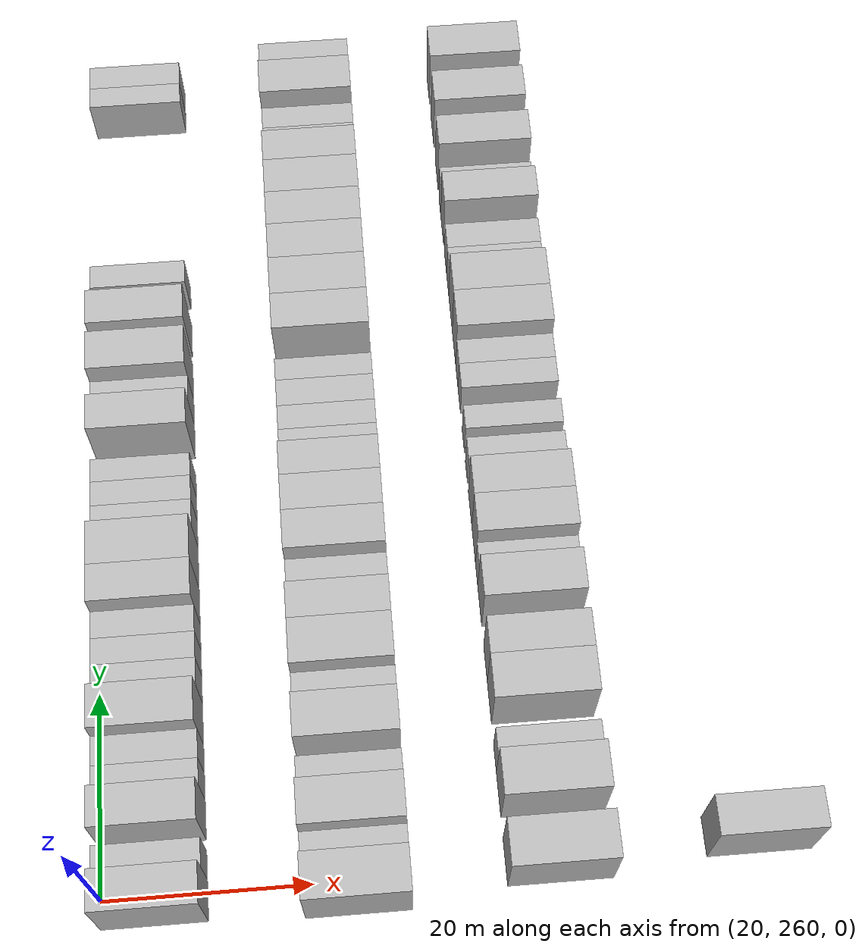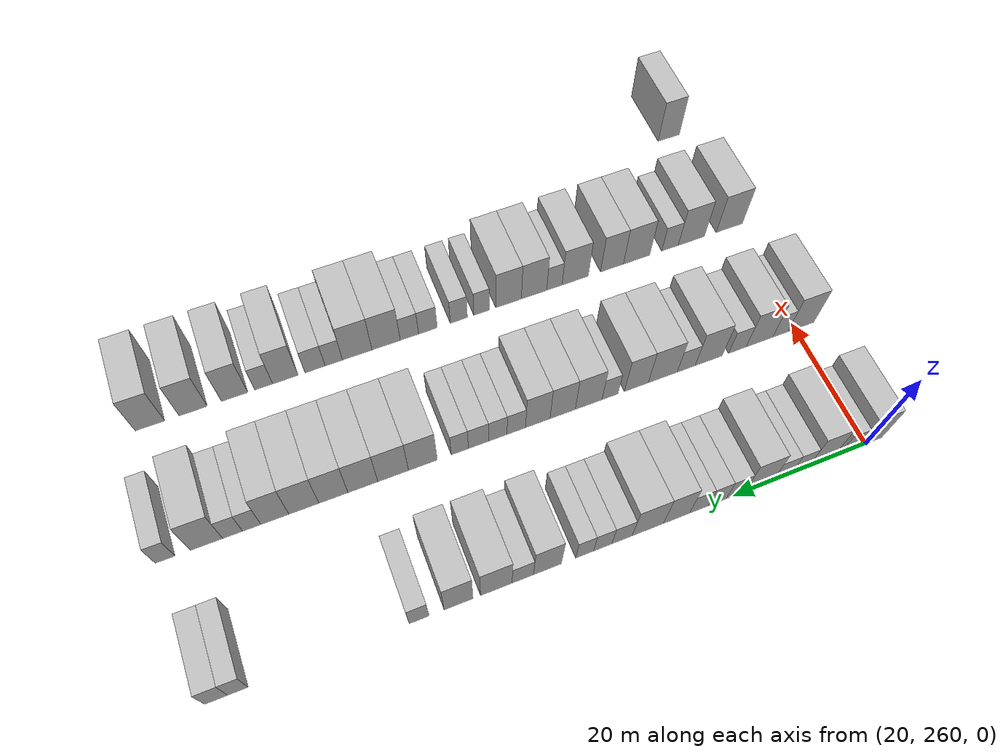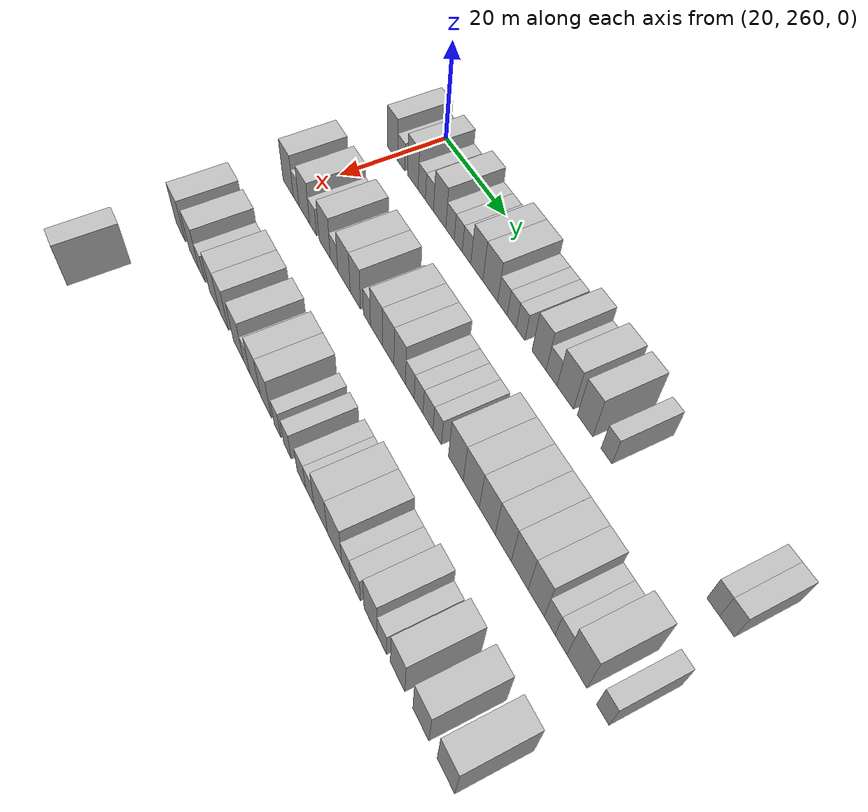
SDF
<sdf version="1.6">
 <world name="default">
  <model name="building_156">
   <static>1</static>
   <pose>25.0000 259.3007 0 0.000000 0.000000 0.000000</pose>
   <link name="link">
    <pose>0 0 4.50 0 0 0</pose>
    <collision name="collision"><geometry><box><size>10.0000 3.8417 9.0000</size></box></geometry></collision>
    <visual name="visual">
     <cast_shadows>0</cast_shadows>
     <geometry><box><size>10.0000 3.8417 9.0000</size></box></geometry>
     <material>
      <script>
       <uri>model://HANNAS_wall/materials/scripts</uri>
       <uri>model://HANNAS_wall/materials/textures</uri>
       <name>vrc/HANNAS_wall</name>
      </script>
     </material>
    </visual>
   </link>
  </model>
  <model name="building_157">
   <static>1</static>
   <pose>25.0000 262.5738 0 0.000000 0.000000 0.000000</pose>
   <link name="link">
    <pose>0 0 3.00 0 0 0</pose>
    <collision name="collision"><geometry><box><size>10.0000 2.7045 6.0000</size></box></geometry></collision>
    <visual name="visual">
     <cast_shadows>0</cast_shadows>
     <geometry><box><size>10.0000 2.7045 6.0000</size></box></geometry>
     <material>
      <script>
       <uri>model://HANNAS_wall/materials/scripts</uri>
       <uri>model://HANNAS_wall/materials/textures</uri>
       <name>vrc/HANNAS_wall</name>
      </script>
     </material>
    </visual>
   </link>
  </model>
  <model name="building_158">
   <static>1</static>
   <pose>25.0000 266.8397 0 0.000000 0.000000 0.000000</pose>
   <link name="link">
    <pose>0 0 4.50 0 0 0</pose>
    <collision name="collision"><geometry><box><size>10.0000 3.8274 9.0000</size></box></geometry></collision>
    <visual name="visual">
     <cast_shadows>0</cast_shadows>
     <geometry><box><size>10.0000 3.8274 9.0000</size></box></geometry>
     <material>
      <script>
       <uri>model://HANNAS_wall/materials/scripts</uri>
       <uri>model://HANNAS_wall/materials/textures</uri>
       <name>vrc/HANNAS_wall</name>
      </script>
     </material>
    </visual>
   </link>
  </model>
  <model name="building_159">
   <static>1</static>
   <pose>25.0000 270.0467 0 0.000000 0.000000 0.000000</pose>
   <link name="link">
    <pose>0 0 3.00 0 0 0</pose>
    <collision name="collision"><geometry><box><size>10.0000 2.5865 6.0000</size></box></geometry></collision>
    <visual name="visual">
     <cast_shadows>0</cast_shadows>
     <geometry><box><size>10.0000 2.5865 6.0000</size></box></geometry>
     <material>
      <script>
       <uri>model://HANNAS_wall/materials/scripts</uri>
       <uri>model://HANNAS_wall/materials/textures</uri>
       <name>vrc/HANNAS_wall</name>
      </script>
     </material>
    </visual>
   </link>
  </model>
  <model name="building_160">
   <static>1</static>
   <pose>25.0000 272.7439 0 0.000000 0.000000 0.000000</pose>
   <link name="link">
    <pose>0 0 3.00 0 0 0</pose>
    <collision name="collision"><geometry><box><size>10.0000 2.8078 6.0000</size></box></geometry></collision>
    <visual name="visual">
     <cast_shadows>0</cast_shadows>
     <geometry><box><size>10.0000 2.8078 6.0000</size></box></geometry>
     <material>
      <script>
       <uri>model://HANNAS_wall/materials/scripts</uri>
       <uri>model://HANNAS_wall/materials/textures</uri>
       <name>vrc/HANNAS_wall</name>
      </script>
     </material>
    </visual>
   </link>
  </model>
  <model name="building_161">
   <static>1</static>
   <pose>25.0000 276.2469 0 0.000000 0.000000 0.000000</pose>
   <link name="link">
    <pose>0 0 4.50 0 0 0</pose>
    <collision name="collision"><geometry><box><size>10.0000 4.1984 9.0000</size></box></geometry></collision>
    <visual name="visual">
     <cast_shadows>0</cast_shadows>
     <geometry><box><size>10.0000 4.1984 9.0000</size></box></geometry>
     <material>
      <script>
       <uri>model://HANNAS_wall/materials/scripts</uri>
       <uri>model://HANNAS_wall/materials/textures</uri>
       <name>vrc/HANNAS_wall</name>
      </script>
     </material>
    </visual>
   </link>
  </model>
  <model name="building_162">
   <static>1</static>
   <pose>25.0000 279.7434 0 0.000000 0.000000 0.000000</pose>
   <link name="link">
    <pose>0 0 3.00 0 0 0</pose>
    <collision name="collision"><geometry><box><size>10.0000 2.7946 6.0000</size></box></geometry></collision>
    <visual name="visual">
     <cast_shadows>0</cast_shadows>
     <geometry><box><size>10.0000 2.7946 6.0000</size></box></geometry>
     <material>
      <script>
       <uri>model://HANNAS_wall/materials/scripts</uri>
       <uri>model://HANNAS_wall/materials/textures</uri>
       <name>vrc/HANNAS_wall</name>
      </script>
     </material>
    </visual>
   </link>
  </model>
  <model name="building_163">
   <static>1</static>
   <pose>25.0000 282.4651 0 0.000000 0.000000 0.000000</pose>
   <link name="link">
    <pose>0 0 3.00 0 0 0</pose>
    <collision name="collision"><geometry><box><size>10.0000 2.6487 6.0000</size></box></geometry></collision>
    <visual name="visual">
     <cast_shadows>0</cast_shadows>
     <geometry><box><size>10.0000 2.6487 6.0000</size></box></geometry>
     <material>
      <script>
       <uri>model://HANNAS_wall/materials/scripts</uri>
       <uri>model://HANNAS_wall/materials/textures</uri>
       <name>vrc/HANNAS_wall</name>
      </script>
     </material>
    </visual>
   </link>
  </model>
  <model name="building_164">
   <static>1</static>
   <pose>25.0000 285.1499 0 0.000000 0.000000 0.000000</pose>
   <link name="link">
    <pose>0 0 3.00 0 0 0</pose>
    <collision name="collision"><geometry><box><size>10.0000 2.7208 6.0000</size></box></geometry></collision>
    <visual name="visual">
     <cast_shadows>0</cast_shadows>
     <geometry><box><size>10.0000 2.7208 6.0000</size></box></geometry>
     <material>
      <script>
       <uri>model://HANNAS_wall/materials/scripts</uri>
       <uri>model://HANNAS_wall/materials/textures</uri>
       <name>vrc/HANNAS_wall</name>
      </script>
     </material>
    </visual>
   </link>
  </model>
  <model name="building_165">
   <static>1</static>
   <pose>25.0000 288.4008 0 0.000000 0.000000 0.000000</pose>
   <link name="link">
    <pose>0 0 4.50 0 0 0</pose>
    <collision name="collision"><geometry><box><size>10.0000 3.7812 9.0000</size></box></geometry></collision>
    <visual name="visual">
     <cast_shadows>0</cast_shadows>
     <geometry><box><size>10.0000 3.7812 9.0000</size></box></geometry>
     <material>
      <script>
       <uri>model://HANNAS_wall/materials/scripts</uri>
       <uri>model://HANNAS_wall/materials/textures</uri>
       <name>vrc/HANNAS_wall</name>
      </script>
     </material>
    </visual>
   </link>
  </model>
  <model name="building_166">
   <static>1</static>
   <pose>25.0000 292.5384 0 0.000000 0.000000 0.000000</pose>
   <link name="link">
    <pose>0 0 4.50 0 0 0</pose>
    <collision name="collision"><geometry><box><size>10.0000 4.4939 9.0000</size></box></geometry></collision>
    <visual name="visual">
     <cast_shadows>0</cast_shadows>
     <geometry><box><size>10.0000 4.4939 9.0000</size></box></geometry>
     <material>
      <script>
       <uri>model://HANNAS_wall/materials/scripts</uri>
       <uri>model://HANNAS_wall/materials/textures</uri>
       <name>vrc/HANNAS_wall</name>
      </script>
     </material>
    </visual>
   </link>
  </model>
  <model name="building_167">
   <static>1</static>
   <pose>25.0000 296.2162 0 0.000000 0.000000 0.000000</pose>
   <link name="link">
    <pose>0 0 3.00 0 0 0</pose>
    <collision name="collision"><geometry><box><size>10.0000 2.8618 6.0000</size></box></geometry></collision>
    <visual name="visual">
     <cast_shadows>0</cast_shadows>
     <geometry><box><size>10.0000 2.8618 6.0000</size></box></geometry>
     <material>
      <script>
       <uri>model://HANNAS_wall/materials/scripts</uri>
       <uri>model://HANNAS_wall/materials/textures</uri>
       <name>vrc/HANNAS_wall</name>
      </script>
     </material>
    </visual>
   </link>
  </model>
  <model name="building_168">
   <static>1</static>
   <pose>25.0000 298.9432 0 0.000000 0.000000 0.000000</pose>
   <link name="link">
    <pose>0 0 3.00 0 0 0</pose>
    <collision name="collision"><geometry><box><size>10.0000 2.5921 6.0000</size></box></geometry></collision>
    <visual name="visual">
     <cast_shadows>0</cast_shadows>
     <geometry><box><size>10.0000 2.5921 6.0000</size></box></geometry>
     <material>
      <script>
       <uri>model://HANNAS_wall/materials/scripts</uri>
       <uri>model://HANNAS_wall/materials/textures</uri>
       <name>vrc/HANNAS_wall</name>
      </script>
     </material>
    </visual>
   </link>
  </model>
  <model name="building_169">
   <static>1</static>
   <pose>25.0000 301.4806 0 0.000000 0.000000 0.000000</pose>
   <link name="link">
    <pose>0 0 3.00 0 0 0</pose>
    <collision name="collision"><geometry><box><size>10.0000 2.4826 6.0000</size></box></geometry></collision>
    <visual name="visual">
     <cast_shadows>0</cast_shadows>
     <geometry><box><size>10.0000 2.4826 6.0000</size></box></geometry>
     <material>
      <script>
       <uri>model://HANNAS_wall/materials/scripts</uri>
       <uri>model://HANNAS_wall/materials/textures</uri>
       <name>vrc/HANNAS_wall</name>
      </script>
     </material>
    </visual>
   </link>
  </model>
  <model name="building_170">
   <static>1</static>
   <pose>25.0000 306.6456 0 0.000000 0.000000 0.000000</pose>
   <link name="link">
    <pose>0 0 4.50 0 0 0</pose>
    <collision name="collision"><geometry><box><size>10.0000 3.8474 9.0000</size></box></geometry></collision>
    <visual name="visual">
     <cast_shadows>0</cast_shadows>
     <geometry><box><size>10.0000 3.8474 9.0000</size></box></geometry>
     <material>
      <script>
       <uri>model://HANNAS_wall/materials/scripts</uri>
       <uri>model://HANNAS_wall/materials/textures</uri>
       <name>vrc/HANNAS_wall</name>
      </script>
     </material>
    </visual>
   </link>
  </model>
  <model name="building_171">
   <static>1</static>
   <pose>25.0000 310.0331 0 0.000000 0.000000 0.000000</pose>
   <link name="link">
    <pose>0 0 3.00 0 0 0</pose>
    <collision name="collision"><geometry><box><size>10.0000 2.9275 6.0000</size></box></geometry></collision>
    <visual name="visual">
     <cast_shadows>0</cast_shadows>
     <geometry><box><size>10.0000 2.9275 6.0000</size></box></geometry>
     <material>
      <script>
       <uri>model://HANNAS_wall/materials/scripts</uri>
       <uri>model://HANNAS_wall/materials/textures</uri>
       <name>vrc/HANNAS_wall</name>
      </script>
     </material>
    </visual>
   </link>
  </model>
  <model name="building_172">
   <static>1</static>
   <pose>25.0000 313.6250 0 0.000000 0.000000 0.000000</pose>
   <link name="link">
    <pose>0 0 4.50 0 0 0</pose>
    <collision name="collision"><geometry><box><size>10.0000 4.2563 9.0000</size></box></geometry></collision>
    <visual name="visual">
     <cast_shadows>0</cast_shadows>
     <geometry><box><size>10.0000 4.2563 9.0000</size></box></geometry>
     <material>
      <script>
       <uri>model://HANNAS_wall/materials/scripts</uri>
       <uri>model://HANNAS_wall/materials/textures</uri>
       <name>vrc/HANNAS_wall</name>
      </script>
     </material>
    </visual>
   </link>
  </model>
  <model name="building_173">
   <static>1</static>
   <pose>25.0000 318.6779 0 0.000000 0.000000 0.000000</pose>
   <link name="link">
    <pose>0 0 4.50 0 0 0</pose>
    <collision name="collision"><geometry><box><size>10.0000 3.8495 9.0000</size></box></geometry></collision>
    <visual name="visual">
     <cast_shadows>0</cast_shadows>
     <geometry><box><size>10.0000 3.8495 9.0000</size></box></geometry>
     <material>
      <script>
       <uri>model://HANNAS_wall/materials/scripts</uri>
       <uri>model://HANNAS_wall/materials/textures</uri>
       <name>vrc/HANNAS_wall</name>
      </script>
     </material>
    </visual>
   </link>
  </model>
  <model name="building_174">
   <static>1</static>
   <pose>25.0000 323.9062 0 0.000000 0.000000 0.000000</pose>
   <link name="link">
    <pose>0 0 3.00 0 0 0</pose>
    <collision name="collision"><geometry><box><size>10.0000 2.6072 6.0000</size></box></geometry></collision>
    <visual name="visual">
     <cast_shadows>0</cast_shadows>
     <geometry><box><size>10.0000 2.6072 6.0000</size></box></geometry>
     <material>
      <script>
       <uri>model://HANNAS_wall/materials/scripts</uri>
       <uri>model://HANNAS_wall/materials/textures</uri>
       <name>vrc/HANNAS_wall</name>
      </script>
     </material>
    </visual>
   </link>
  </model>
  <model name="building_175">
   <static>1</static>
   <pose>25.0000 346.9584 0 0.000000 0.000000 0.000000</pose>
   <link name="link">
    <pose>0 0 3.00 0 0 0</pose>
    <collision name="collision"><geometry><box><size>10.0000 2.4990 6.0000</size></box></geometry></collision>
    <visual name="visual">
     <cast_shadows>0</cast_shadows>
     <geometry><box><size>10.0000 2.4990 6.0000</size></box></geometry>
     <material>
      <script>
       <uri>model://HANNAS_wall/materials/scripts</uri>
       <uri>model://HANNAS_wall/materials/textures</uri>
       <name>vrc/HANNAS_wall</name>
      </script>
     </material>
    </visual>
   </link>
  </model>
  <model name="building_176">
   <static>1</static>
   <pose>25.0000 349.6196 0 0.000000 0.000000 0.000000</pose>
   <link name="link">
    <pose>0 0 3.00 0 0 0</pose>
    <collision name="collision"><geometry><box><size>10.0000 2.8233 6.0000</size></box></geometry></collision>
    <visual name="visual">
     <cast_shadows>0</cast_shadows>
     <geometry><box><size>10.0000 2.8233 6.0000</size></box></geometry>
     <material>
      <script>
       <uri>model://HANNAS_wall/materials/scripts</uri>
       <uri>model://HANNAS_wall/materials/textures</uri>
       <name>vrc/HANNAS_wall</name>
      </script>
     </material>
    </visual>
   </link>
  </model>
  <model name="building_329">
   <static>1</static>
   <pose>44.0000 259.1015 0 0.000000 0.000000 0.000000</pose>
   <link name="link">
    <pose>0 0 4.50 0 0 0</pose>
    <collision name="collision"><geometry><box><size>10.0000 4.3296 9.0000</size></box></geometry></collision>
    <visual name="visual">
     <cast_shadows>0</cast_shadows>
     <geometry><box><size>10.0000 4.3296 9.0000</size></box></geometry>
     <material>
      <script>
       <uri>model://HANNAS_wall/materials/scripts</uri>
       <uri>model://HANNAS_wall/materials/textures</uri>
       <name>vrc/HANNAS_wall</name>
      </script>
     </material>
    </visual>
   </link>
  </model>
  <model name="building_330">
   <static>1</static>
   <pose>44.0000 262.4718 0 0.000000 0.000000 0.000000</pose>
   <link name="link">
    <pose>0 0 3.00 0 0 0</pose>
    <collision name="collision"><geometry><box><size>10.0000 2.4110 6.0000</size></box></geometry></collision>
    <visual name="visual">
     <cast_shadows>0</cast_shadows>
     <geometry><box><size>10.0000 2.4110 6.0000</size></box></geometry>
     <material>
      <script>
       <uri>model://HANNAS_wall/materials/scripts</uri>
       <uri>model://HANNAS_wall/materials/textures</uri>
       <name>vrc/HANNAS_wall</name>
      </script>
     </material>
    </visual>
   </link>
  </model>
  <model name="building_331">
   <static>1</static>
   <pose>44.0000 265.8201 0 0.000000 0.000000 0.000000</pose>
   <link name="link">
    <pose>0 0 4.50 0 0 0</pose>
    <collision name="collision"><geometry><box><size>10.0000 4.2857 9.0000</size></box></geometry></collision>
    <visual name="visual">
     <cast_shadows>0</cast_shadows>
     <geometry><box><size>10.0000 4.2857 9.0000</size></box></geometry>
     <material>
      <script>
       <uri>model://HANNAS_wall/materials/scripts</uri>
       <uri>model://HANNAS_wall/materials/textures</uri>
       <name>vrc/HANNAS_wall</name>
      </script>
     </material>
    </visual>
   </link>
  </model>
  <model name="building_332">
   <static>1</static>
   <pose>44.0000 269.3614 0 0.000000 0.000000 0.000000</pose>
   <link name="link">
    <pose>0 0 3.00 0 0 0</pose>
    <collision name="collision"><geometry><box><size>10.0000 2.7969 6.0000</size></box></geometry></collision>
    <visual name="visual">
     <cast_shadows>0</cast_shadows>
     <geometry><box><size>10.0000 2.7969 6.0000</size></box></geometry>
     <material>
      <script>
       <uri>model://HANNAS_wall/materials/scripts</uri>
       <uri>model://HANNAS_wall/materials/textures</uri>
       <name>vrc/HANNAS_wall</name>
      </script>
     </material>
    </visual>
   </link>
  </model>
  <model name="building_333">
   <static>1</static>
   <pose>44.0000 273.9099 0 0.000000 0.000000 0.000000</pose>
   <link name="link">
    <pose>0 0 4.50 0 0 0</pose>
    <collision name="collision"><geometry><box><size>10.0000 4.2999 9.0000</size></box></geometry></collision>
    <visual name="visual">
     <cast_shadows>0</cast_shadows>
     <geometry><box><size>10.0000 4.2999 9.0000</size></box></geometry>
     <material>
      <script>
       <uri>model://HANNAS_wall/materials/scripts</uri>
       <uri>model://HANNAS_wall/materials/textures</uri>
       <name>vrc/HANNAS_wall</name>
      </script>
     </material>
    </visual>
   </link>
  </model>
  <model name="building_334">
   <static>1</static>
   <pose>44.0000 277.4587 0 0.000000 0.000000 0.000000</pose>
   <link name="link">
    <pose>0 0 3.00 0 0 0</pose>
    <collision name="collision"><geometry><box><size>10.0000 2.7978 6.0000</size></box></geometry></collision>
    <visual name="visual">
     <cast_shadows>0</cast_shadows>
     <geometry><box><size>10.0000 2.7978 6.0000</size></box></geometry>
     <material>
      <script>
       <uri>model://HANNAS_wall/materials/scripts</uri>
       <uri>model://HANNAS_wall/materials/textures</uri>
       <name>vrc/HANNAS_wall</name>
      </script>
     </material>
    </visual>
   </link>
  </model>
  <model name="building_335">
   <static>1</static>
   <pose>44.0000 281.1033 0 0.000000 0.000000 0.000000</pose>
   <link name="link">
    <pose>0 0 4.50 0 0 0</pose>
    <collision name="collision"><geometry><box><size>10.0000 4.4912 9.0000</size></box></geometry></collision>
    <visual name="visual">
     <cast_shadows>0</cast_shadows>
     <geometry><box><size>10.0000 4.4912 9.0000</size></box></geometry>
     <material>
      <script>
       <uri>model://HANNAS_wall/materials/scripts</uri>
       <uri>model://HANNAS_wall/materials/textures</uri>
       <name>vrc/HANNAS_wall</name>
      </script>
     </material>
    </visual>
   </link>
  </model>
  <model name="building_336">
   <static>1</static>
   <pose>44.0000 285.1801 0 0.000000 0.000000 0.000000</pose>
   <link name="link">
    <pose>0 0 4.50 0 0 0</pose>
    <collision name="collision"><geometry><box><size>10.0000 3.6625 9.0000</size></box></geometry></collision>
    <visual name="visual">
     <cast_shadows>0</cast_shadows>
     <geometry><box><size>10.0000 3.6625 9.0000</size></box></geometry>
     <material>
      <script>
       <uri>model://HANNAS_wall/materials/scripts</uri>
       <uri>model://HANNAS_wall/materials/textures</uri>
       <name>vrc/HANNAS_wall</name>
      </script>
     </material>
    </visual>
   </link>
  </model>
  <model name="building_337">
   <static>1</static>
   <pose>44.0000 289.2241 0 0.000000 0.000000 0.000000</pose>
   <link name="link">
    <pose>0 0 3.00 0 0 0</pose>
    <collision name="collision"><geometry><box><size>10.0000 2.4255 6.0000</size></box></geometry></collision>
    <visual name="visual">
     <cast_shadows>0</cast_shadows>
     <geometry><box><size>10.0000 2.4255 6.0000</size></box></geometry>
     <material>
      <script>
       <uri>model://HANNAS_wall/materials/scripts</uri>
       <uri>model://HANNAS_wall/materials/textures</uri>
       <name>vrc/HANNAS_wall</name>
      </script>
     </material>
    </visual>
   </link>
  </model>
  <model name="building_338">
   <static>1</static>
   <pose>44.0000 292.4538 0 0.000000 0.000000 0.000000</pose>
   <link name="link">
    <pose>0 0 4.50 0 0 0</pose>
    <collision name="collision"><geometry><box><size>10.0000 4.0338 9.0000</size></box></geometry></collision>
    <visual name="visual">
     <cast_shadows>0</cast_shadows>
     <geometry><box><size>10.0000 4.0338 9.0000</size></box></geometry>
     <material>
      <script>
       <uri>model://HANNAS_wall/materials/scripts</uri>
       <uri>model://HANNAS_wall/materials/textures</uri>
       <name>vrc/HANNAS_wall</name>
      </script>
     </material>
    </visual>
   </link>
  </model>
  <model name="building_339">
   <static>1</static>
   <pose>44.0000 296.3548 0 0.000000 0.000000 0.000000</pose>
   <link name="link">
    <pose>0 0 4.50 0 0 0</pose>
    <collision name="collision"><geometry><box><size>10.0000 3.7683 9.0000</size></box></geometry></collision>
    <visual name="visual">
     <cast_shadows>0</cast_shadows>
     <geometry><box><size>10.0000 3.7683 9.0000</size></box></geometry>
     <material>
      <script>
       <uri>model://HANNAS_wall/materials/scripts</uri>
       <uri>model://HANNAS_wall/materials/textures</uri>
       <name>vrc/HANNAS_wall</name>
      </script>
     </material>
    </visual>
   </link>
  </model>
  <model name="building_340">
   <static>1</static>
   <pose>44.0000 300.0553 0 0.000000 0.000000 0.000000</pose>
   <link name="link">
    <pose>0 0 4.50 0 0 0</pose>
    <collision name="collision"><geometry><box><size>10.0000 3.6328 9.0000</size></box></geometry></collision>
    <visual name="visual">
     <cast_shadows>0</cast_shadows>
     <geometry><box><size>10.0000 3.6328 9.0000</size></box></geometry>
     <material>
      <script>
       <uri>model://HANNAS_wall/materials/scripts</uri>
       <uri>model://HANNAS_wall/materials/textures</uri>
       <name>vrc/HANNAS_wall</name>
      </script>
     </material>
    </visual>
   </link>
  </model>
  <model name="building_341">
   <static>1</static>
   <pose>44.0000 303.2255 0 0.000000 0.000000 0.000000</pose>
   <link name="link">
    <pose>0 0 3.00 0 0 0</pose>
    <collision name="collision"><geometry><box><size>10.0000 2.7075 6.0000</size></box></geometry></collision>
    <visual name="visual">
     <cast_shadows>0</cast_shadows>
     <geometry><box><size>10.0000 2.7075 6.0000</size></box></geometry>
     <material>
      <script>
       <uri>model://HANNAS_wall/materials/scripts</uri>
       <uri>model://HANNAS_wall/materials/textures</uri>
       <name>vrc/HANNAS_wall</name>
      </script>
     </material>
    </visual>
   </link>
  </model>
  <model name="building_342">
   <static>1</static>
   <pose>44.0000 305.9161 0 0.000000 0.000000 0.000000</pose>
   <link name="link">
    <pose>0 0 3.00 0 0 0</pose>
    <collision name="collision"><geometry><box><size>10.0000 2.6736 6.0000</size></box></geometry></collision>
    <visual name="visual">
     <cast_shadows>0</cast_shadows>
     <geometry><box><size>10.0000 2.6736 6.0000</size></box></geometry>
     <material>
      <script>
       <uri>model://HANNAS_wall/materials/scripts</uri>
       <uri>model://HANNAS_wall/materials/textures</uri>
       <name>vrc/HANNAS_wall</name>
      </script>
     </material>
    </visual>
   </link>
  </model>
  <model name="building_343">
   <static>1</static>
   <pose>44.0000 308.7205 0 0.000000 0.000000 0.000000</pose>
   <link name="link">
    <pose>0 0 3.00 0 0 0</pose>
    <collision name="collision"><geometry><box><size>10.0000 2.9352 6.0000</size></box></geometry></collision>
    <visual name="visual">
     <cast_shadows>0</cast_shadows>
     <geometry><box><size>10.0000 2.9352 6.0000</size></box></geometry>
     <material>
      <script>
       <uri>model://HANNAS_wall/materials/scripts</uri>
       <uri>model://HANNAS_wall/materials/textures</uri>
       <name>vrc/HANNAS_wall</name>
      </script>
     </material>
    </visual>
   </link>
  </model>
  <model name="building_344">
   <static>1</static>
   <pose>44.0000 311.4164 0 0.000000 0.000000 0.000000</pose>
   <link name="link">
    <pose>0 0 3.00 0 0 0</pose>
    <collision name="collision"><geometry><box><size>10.0000 2.4567 6.0000</size></box></geometry></collision>
    <visual name="visual">
     <cast_shadows>0</cast_shadows>
     <geometry><box><size>10.0000 2.4567 6.0000</size></box></geometry>
     <material>
      <script>
       <uri>model://HANNAS_wall/materials/scripts</uri>
       <uri>model://HANNAS_wall/materials/textures</uri>
       <name>vrc/HANNAS_wall</name>
      </script>
     </material>
    </visual>
   </link>
  </model>
  <model name="building_345">
   <static>1</static>
   <pose>44.0000 316.6854 0 0.000000 0.000000 0.000000</pose>
   <link name="link">
    <pose>0 0 4.50 0 0 0</pose>
    <collision name="collision"><geometry><box><size>10.0000 4.0813 9.0000</size></box></geometry></collision>
    <visual name="visual">
     <cast_shadows>0</cast_shadows>
     <geometry><box><size>10.0000 4.0813 9.0000</size></box></geometry>
     <material>
      <script>
       <uri>model://HANNAS_wall/materials/scripts</uri>
       <uri>model://HANNAS_wall/materials/textures</uri>
       <name>vrc/HANNAS_wall</name>
      </script>
     </material>
    </visual>
   </link>
  </model>
  <model name="building_346">
   <static>1</static>
   <pose>44.0000 320.8776 0 0.000000 0.000000 0.000000</pose>
   <link name="link">
    <pose>0 0 4.50 0 0 0</pose>
    <collision name="collision"><geometry><box><size>10.0000 4.3031 9.0000</size></box></geometry></collision>
    <visual name="visual">
     <cast_shadows>0</cast_shadows>
     <geometry><box><size>10.0000 4.3031 9.0000</size></box></geometry>
     <material>
      <script>
       <uri>model://HANNAS_wall/materials/scripts</uri>
       <uri>model://HANNAS_wall/materials/textures</uri>
       <name>vrc/HANNAS_wall</name>
      </script>
     </material>
    </visual>
   </link>
  </model>
  <model name="building_347">
   <static>1</static>
   <pose>44.0000 325.0958 0 0.000000 0.000000 0.000000</pose>
   <link name="link">
    <pose>0 0 4.50 0 0 0</pose>
    <collision name="collision"><geometry><box><size>10.0000 4.1332 9.0000</size></box></geometry></collision>
    <visual name="visual">
     <cast_shadows>0</cast_shadows>
     <geometry><box><size>10.0000 4.1332 9.0000</size></box></geometry>
     <material>
      <script>
       <uri>model://HANNAS_wall/materials/scripts</uri>
       <uri>model://HANNAS_wall/materials/textures</uri>
       <name>vrc/HANNAS_wall</name>
      </script>
     </material>
    </visual>
   </link>
  </model>
  <model name="building_348">
   <static>1</static>
   <pose>44.0000 329.1545 0 0.000000 0.000000 0.000000</pose>
   <link name="link">
    <pose>0 0 4.50 0 0 0</pose>
    <collision name="collision"><geometry><box><size>10.0000 3.9843 9.0000</size></box></geometry></collision>
    <visual name="visual">
     <cast_shadows>0</cast_shadows>
     <geometry><box><size>10.0000 3.9843 9.0000</size></box></geometry>
     <material>
      <script>
       <uri>model://HANNAS_wall/materials/scripts</uri>
       <uri>model://HANNAS_wall/materials/textures</uri>
       <name>vrc/HANNAS_wall</name>
      </script>
     </material>
    </visual>
   </link>
  </model>
  <model name="building_349">
   <static>1</static>
   <pose>44.0000 333.1925 0 0.000000 0.000000 0.000000</pose>
   <link name="link">
    <pose>0 0 4.50 0 0 0</pose>
    <collision name="collision"><geometry><box><size>10.0000 4.0915 9.0000</size></box></geometry></collision>
    <visual name="visual">
     <cast_shadows>0</cast_shadows>
     <geometry><box><size>10.0000 4.0915 9.0000</size></box></geometry>
     <material>
      <script>
       <uri>model://HANNAS_wall/materials/scripts</uri>
       <uri>model://HANNAS_wall/materials/textures</uri>
       <name>vrc/HANNAS_wall</name>
      </script>
     </material>
    </visual>
   </link>
  </model>
  <model name="building_350">
   <static>1</static>
   <pose>44.0000 337.1166 0 0.000000 0.000000 0.000000</pose>
   <link name="link">
    <pose>0 0 4.50 0 0 0</pose>
    <collision name="collision"><geometry><box><size>10.0000 3.7567 9.0000</size></box></geometry></collision>
    <visual name="visual">
     <cast_shadows>0</cast_shadows>
     <geometry><box><size>10.0000 3.7567 9.0000</size></box></geometry>
     <material>
      <script>
       <uri>model://HANNAS_wall/materials/scripts</uri>
       <uri>model://HANNAS_wall/materials/textures</uri>
       <name>vrc/HANNAS_wall</name>
      </script>
     </material>
    </visual>
   </link>
  </model>
  <model name="building_351">
   <static>1</static>
   <pose>44.0000 340.2146 0 0.000000 0.000000 0.000000</pose>
   <link name="link">
    <pose>0 0 3.00 0 0 0</pose>
    <collision name="collision"><geometry><box><size>10.0000 2.4395 6.0000</size></box></geometry></collision>
    <visual name="visual">
     <cast_shadows>0</cast_shadows>
     <geometry><box><size>10.0000 2.4395 6.0000</size></box></geometry>
     <material>
      <script>
       <uri>model://HANNAS_wall/materials/scripts</uri>
       <uri>model://HANNAS_wall/materials/textures</uri>
       <name>vrc/HANNAS_wall</name>
      </script>
     </material>
    </visual>
   </link>
  </model>
  <model name="building_352">
   <static>1</static>
   <pose>44.0000 342.7566 0 0.000000 0.000000 0.000000</pose>
   <link name="link">
    <pose>0 0 3.00 0 0 0</pose>
    <collision name="collision"><geometry><box><size>10.0000 2.6445 6.0000</size></box></geometry></collision>
    <visual name="visual">
     <cast_shadows>0</cast_shadows>
     <geometry><box><size>10.0000 2.6445 6.0000</size></box></geometry>
     <material>
      <script>
       <uri>model://HANNAS_wall/materials/scripts</uri>
       <uri>model://HANNAS_wall/materials/textures</uri>
       <name>vrc/HANNAS_wall</name>
      </script>
     </material>
    </visual>
   </link>
  </model>
  <model name="building_353">
   <static>1</static>
   <pose>44.0000 346.2053 0 0.000000 0.000000 0.000000</pose>
   <link name="link">
    <pose>0 0 4.50 0 0 0</pose>
    <collision name="collision"><geometry><box><size>10.0000 4.2528 9.0000</size></box></geometry></collision>
    <visual name="visual">
     <cast_shadows>0</cast_shadows>
     <geometry><box><size>10.0000 4.2528 9.0000</size></box></geometry>
     <material>
      <script>
       <uri>model://HANNAS_wall/materials/scripts</uri>
       <uri>model://HANNAS_wall/materials/textures</uri>
       <name>vrc/HANNAS_wall</name>
      </script>
     </material>
    </visual>
   </link>
  </model>
  <model name="building_354">
   <static>1</static>
   <pose>44.0000 351.6042 0 0.000000 0.000000 0.000000</pose>
   <link name="link">
    <pose>0 0 3.00 0 0 0</pose>
    <collision name="collision"><geometry><box><size>10.0000 2.5450 6.0000</size></box></geometry></collision>
    <visual name="visual">
     <cast_shadows>0</cast_shadows>
     <geometry><box><size>10.0000 2.5450 6.0000</size></box></geometry>
     <material>
      <script>
       <uri>model://HANNAS_wall/materials/scripts</uri>
       <uri>model://HANNAS_wall/materials/textures</uri>
       <name>vrc/HANNAS_wall</name>
      </script>
     </material>
    </visual>
   </link>
  </model>
  <model name="building_505">
   <static>1</static>
   <pose>63.0000 260.6213 0 0.000000 0.000000 0.000000</pose>
   <link name="link">
    <pose>0 0 4.50 0 0 0</pose>
    <collision name="collision"><geometry><box><size>10.0000 4.4699 9.0000</size></box></geometry></collision>
    <visual name="visual">
     <cast_shadows>0</cast_shadows>
     <geometry><box><size>10.0000 4.4699 9.0000</size></box></geometry>
     <material>
      <script>
       <uri>model://HANNAS_wall/materials/scripts</uri>
       <uri>model://HANNAS_wall/materials/textures</uri>
       <name>vrc/HANNAS_wall</name>
      </script>
     </material>
    </visual>
   </link>
  </model>
  <model name="building_506">
   <static>1</static>
   <pose>63.0000 267.0608 0 0.000000 0.000000 0.000000</pose>
   <link name="link">
    <pose>0 0 4.50 0 0 0</pose>
    <collision name="collision"><geometry><box><size>10.0000 4.4092 9.0000</size></box></geometry></collision>
    <visual name="visual">
     <cast_shadows>0</cast_shadows>
     <geometry><box><size>10.0000 4.4092 9.0000</size></box></geometry>
     <material>
      <script>
       <uri>model://HANNAS_wall/materials/scripts</uri>
       <uri>model://HANNAS_wall/materials/textures</uri>
       <name>vrc/HANNAS_wall</name>
      </script>
     </material>
    </visual>
   </link>
  </model>
  <model name="building_507">
   <static>1</static>
   <pose>63.0000 270.6337 0 0.000000 0.000000 0.000000</pose>
   <link name="link">
    <pose>0 0 3.00 0 0 0</pose>
    <collision name="collision"><geometry><box><size>10.0000 2.7365 6.0000</size></box></geometry></collision>
    <visual name="visual">
     <cast_shadows>0</cast_shadows>
     <geometry><box><size>10.0000 2.7365 6.0000</size></box></geometry>
     <material>
      <script>
       <uri>model://HANNAS_wall/materials/scripts</uri>
       <uri>model://HANNAS_wall/materials/textures</uri>
       <name>vrc/HANNAS_wall</name>
      </script>
     </material>
    </visual>
   </link>
  </model>
  <model name="building_508">
   <static>1</static>
   <pose>63.0000 276.1651 0 0.000000 0.000000 0.000000</pose>
   <link name="link">
    <pose>0 0 4.50 0 0 0</pose>
    <collision name="collision"><geometry><box><size>10.0000 4.3264 9.0000</size></box></geometry></collision>
    <visual name="visual">
     <cast_shadows>0</cast_shadows>
     <geometry><box><size>10.0000 4.3264 9.0000</size></box></geometry>
     <material>
      <script>
       <uri>model://HANNAS_wall/materials/scripts</uri>
       <uri>model://HANNAS_wall/materials/textures</uri>
       <name>vrc/HANNAS_wall</name>
      </script>
     </material>
    </visual>
   </link>
  </model>
  <model name="building_509">
   <static>1</static>
   <pose>63.0000 280.1965 0 0.000000 0.000000 0.000000</pose>
   <link name="link">
    <pose>0 0 4.50 0 0 0</pose>
    <collision name="collision"><geometry><box><size>10.0000 3.7363 9.0000</size></box></geometry></collision>
    <visual name="visual">
     <cast_shadows>0</cast_shadows>
     <geometry><box><size>10.0000 3.7363 9.0000</size></box></geometry>
     <material>
      <script>
       <uri>model://HANNAS_wall/materials/scripts</uri>
       <uri>model://HANNAS_wall/materials/textures</uri>
       <name>vrc/HANNAS_wall</name>
      </script>
     </material>
    </visual>
   </link>
  </model>
  <model name="building_510">
   <static>1</static>
   <pose>63.0000 286.1677 0 0.000000 0.000000 0.000000</pose>
   <link name="link">
    <pose>0 0 4.50 0 0 0</pose>
    <collision name="collision"><geometry><box><size>10.0000 4.2062 9.0000</size></box></geometry></collision>
    <visual name="visual">
     <cast_shadows>0</cast_shadows>
     <geometry><box><size>10.0000 4.2062 9.0000</size></box></geometry>
     <material>
      <script>
       <uri>model://HANNAS_wall/materials/scripts</uri>
       <uri>model://HANNAS_wall/materials/textures</uri>
       <name>vrc/HANNAS_wall</name>
      </script>
     </material>
    </visual>
   </link>
  </model>
  <model name="building_511">
   <static>1</static>
   <pose>63.0000 289.4910 0 0.000000 0.000000 0.000000</pose>
   <link name="link">
    <pose>0 0 3.00 0 0 0</pose>
    <collision name="collision"><geometry><box><size>10.0000 2.4405 6.0000</size></box></geometry></collision>
    <visual name="visual">
     <cast_shadows>0</cast_shadows>
     <geometry><box><size>10.0000 2.4405 6.0000</size></box></geometry>
     <material>
      <script>
       <uri>model://HANNAS_wall/materials/scripts</uri>
       <uri>model://HANNAS_wall/materials/textures</uri>
       <name>vrc/HANNAS_wall</name>
      </script>
     </material>
    </visual>
   </link>
  </model>
  <model name="building_512">
   <static>1</static>
   <pose>63.0000 292.7194 0 0.000000 0.000000 0.000000</pose>
   <link name="link">
    <pose>0 0 4.50 0 0 0</pose>
    <collision name="collision"><geometry><box><size>10.0000 4.0164 9.0000</size></box></geometry></collision>
    <visual name="visual">
     <cast_shadows>0</cast_shadows>
     <geometry><box><size>10.0000 4.0164 9.0000</size></box></geometry>
     <material>
      <script>
       <uri>model://HANNAS_wall/materials/scripts</uri>
       <uri>model://HANNAS_wall/materials/textures</uri>
       <name>vrc/HANNAS_wall</name>
      </script>
     </material>
    </visual>
   </link>
  </model>
  <model name="building_513">
   <static>1</static>
   <pose>63.0000 296.7340 0 0.000000 0.000000 0.000000</pose>
   <link name="link">
    <pose>0 0 4.50 0 0 0</pose>
    <collision name="collision"><geometry><box><size>10.0000 4.0128 9.0000</size></box></geometry></collision>
    <visual name="visual">
     <cast_shadows>0</cast_shadows>
     <geometry><box><size>10.0000 4.0128 9.0000</size></box></geometry>
     <material>
      <script>
       <uri>model://HANNAS_wall/materials/scripts</uri>
       <uri>model://HANNAS_wall/materials/textures</uri>
       <name>vrc/HANNAS_wall</name>
      </script>
     </material>
    </visual>
   </link>
  </model>
  <model name="building_514">
   <static>1</static>
   <pose>63.0000 300.9514 0 0.000000 0.000000 0.000000</pose>
   <link name="link">
    <pose>0 0 3.00 0 0 0</pose>
    <collision name="collision"><geometry><box><size>10.0000 2.4220 6.0000</size></box></geometry></collision>
    <visual name="visual">
     <cast_shadows>0</cast_shadows>
     <geometry><box><size>10.0000 2.4220 6.0000</size></box></geometry>
     <material>
      <script>
       <uri>model://HANNAS_wall/materials/scripts</uri>
       <uri>model://HANNAS_wall/materials/textures</uri>
       <name>vrc/HANNAS_wall</name>
      </script>
     </material>
    </visual>
   </link>
  </model>
  <model name="building_515">
   <static>1</static>
   <pose>63.0000 304.4737 0 0.000000 0.000000 0.000000</pose>
   <link name="link">
    <pose>0 0 3.00 0 0 0</pose>
    <collision name="collision"><geometry><box><size>10.0000 2.6225 6.0000</size></box></geometry></collision>
    <visual name="visual">
     <cast_shadows>0</cast_shadows>
     <geometry><box><size>10.0000 2.6225 6.0000</size></box></geometry>
     <material>
      <script>
       <uri>model://HANNAS_wall/materials/scripts</uri>
       <uri>model://HANNAS_wall/materials/textures</uri>
       <name>vrc/HANNAS_wall</name>
      </script>
     </material>
    </visual>
   </link>
  </model>
  <model name="building_516">
   <static>1</static>
   <pose>63.0000 309.2012 0 0.000000 0.000000 0.000000</pose>
   <link name="link">
    <pose>0 0 3.00 0 0 0</pose>
    <collision name="collision"><geometry><box><size>10.0000 2.8326 6.0000</size></box></geometry></collision>
    <visual name="visual">
     <cast_shadows>0</cast_shadows>
     <geometry><box><size>10.0000 2.8326 6.0000</size></box></geometry>
     <material>
      <script>
       <uri>model://HANNAS_wall/materials/scripts</uri>
       <uri>model://HANNAS_wall/materials/textures</uri>
       <name>vrc/HANNAS_wall</name>
      </script>
     </material>
    </visual>
   </link>
  </model>
  <model name="building_517">
   <static>1</static>
   <pose>63.0000 312.0038 0 0.000000 0.000000 0.000000</pose>
   <link name="link">
    <pose>0 0 3.00 0 0 0</pose>
    <collision name="collision"><geometry><box><size>10.0000 2.7726 6.0000</size></box></geometry></collision>
    <visual name="visual">
     <cast_shadows>0</cast_shadows>
     <geometry><box><size>10.0000 2.7726 6.0000</size></box></geometry>
     <material>
      <script>
       <uri>model://HANNAS_wall/materials/scripts</uri>
       <uri>model://HANNAS_wall/materials/textures</uri>
       <name>vrc/HANNAS_wall</name>
      </script>
     </material>
    </visual>
   </link>
  </model>
  <model name="building_518">
   <static>1</static>
   <pose>63.0000 315.5112 0 0.000000 0.000000 0.000000</pose>
   <link name="link">
    <pose>0 0 4.50 0 0 0</pose>
    <collision name="collision"><geometry><box><size>10.0000 4.2421 9.0000</size></box></geometry></collision>
    <visual name="visual">
     <cast_shadows>0</cast_shadows>
     <geometry><box><size>10.0000 4.2421 9.0000</size></box></geometry>
     <material>
      <script>
       <uri>model://HANNAS_wall/materials/scripts</uri>
       <uri>model://HANNAS_wall/materials/textures</uri>
       <name>vrc/HANNAS_wall</name>
      </script>
     </material>
    </visual>
   </link>
  </model>
  <model name="building_519">
   <static>1</static>
   <pose>63.0000 319.8176 0 0.000000 0.000000 0.000000</pose>
   <link name="link">
    <pose>0 0 4.50 0 0 0</pose>
    <collision name="collision"><geometry><box><size>10.0000 4.3706 9.0000</size></box></geometry></collision>
    <visual name="visual">
     <cast_shadows>0</cast_shadows>
     <geometry><box><size>10.0000 4.3706 9.0000</size></box></geometry>
     <material>
      <script>
       <uri>model://HANNAS_wall/materials/scripts</uri>
       <uri>model://HANNAS_wall/materials/textures</uri>
       <name>vrc/HANNAS_wall</name>
      </script>
     </material>
    </visual>
   </link>
  </model>
  <model name="building_520">
   <static>1</static>
   <pose>63.0000 323.2861 0 0.000000 0.000000 0.000000</pose>
   <link name="link">
    <pose>0 0 3.00 0 0 0</pose>
    <collision name="collision"><geometry><box><size>10.0000 2.5665 6.0000</size></box></geometry></collision>
    <visual name="visual">
     <cast_shadows>0</cast_shadows>
     <geometry><box><size>10.0000 2.5665 6.0000</size></box></geometry>
     <material>
      <script>
       <uri>model://HANNAS_wall/materials/scripts</uri>
       <uri>model://HANNAS_wall/materials/textures</uri>
       <name>vrc/HANNAS_wall</name>
      </script>
     </material>
    </visual>
   </link>
  </model>
  <model name="building_521">
   <static>1</static>
   <pose>63.0000 326.0339 0 0.000000 0.000000 0.000000</pose>
   <link name="link">
    <pose>0 0 3.00 0 0 0</pose>
    <collision name="collision"><geometry><box><size>10.0000 2.9292 6.0000</size></box></geometry></collision>
    <visual name="visual">
     <cast_shadows>0</cast_shadows>
     <geometry><box><size>10.0000 2.9292 6.0000</size></box></geometry>
     <material>
      <script>
       <uri>model://HANNAS_wall/materials/scripts</uri>
       <uri>model://HANNAS_wall/materials/textures</uri>
       <name>vrc/HANNAS_wall</name>
      </script>
     </material>
    </visual>
   </link>
  </model>
  <model name="building_522">
   <static>1</static>
   <pose>63.0000 330.3367 0 0.000000 0.000000 0.000000</pose>
   <link name="link">
    <pose>0 0 4.50 0 0 0</pose>
    <collision name="collision"><geometry><box><size>10.0000 3.6764 9.0000</size></box></geometry></collision>
    <visual name="visual">
     <cast_shadows>0</cast_shadows>
     <geometry><box><size>10.0000 3.6764 9.0000</size></box></geometry>
     <material>
      <script>
       <uri>model://HANNAS_wall/materials/scripts</uri>
       <uri>model://HANNAS_wall/materials/textures</uri>
       <name>vrc/HANNAS_wall</name>
      </script>
     </material>
    </visual>
   </link>
  </model>
  <model name="building_523">
   <static>1</static>
   <pose>63.0000 333.4541 0 0.000000 0.000000 0.000000</pose>
   <link name="link">
    <pose>0 0 3.00 0 0 0</pose>
    <collision name="collision"><geometry><box><size>10.0000 2.5583 6.0000</size></box></geometry></collision>
    <visual name="visual">
     <cast_shadows>0</cast_shadows>
     <geometry><box><size>10.0000 2.5583 6.0000</size></box></geometry>
     <material>
      <script>
       <uri>model://HANNAS_wall/materials/scripts</uri>
       <uri>model://HANNAS_wall/materials/textures</uri>
       <name>vrc/HANNAS_wall</name>
      </script>
     </material>
    </visual>
   </link>
  </model>
  <model name="building_524">
   <static>1</static>
   <pose>63.0000 337.6069 0 0.000000 0.000000 0.000000</pose>
   <link name="link">
    <pose>0 0 4.50 0 0 0</pose>
    <collision name="collision"><geometry><box><size>10.0000 3.7473 9.0000</size></box></geometry></collision>
    <visual name="visual">
     <cast_shadows>0</cast_shadows>
     <geometry><box><size>10.0000 3.7473 9.0000</size></box></geometry>
     <material>
      <script>
       <uri>model://HANNAS_wall/materials/scripts</uri>
       <uri>model://HANNAS_wall/materials/textures</uri>
       <name>vrc/HANNAS_wall</name>
      </script>
     </material>
    </visual>
   </link>
  </model>
  <model name="building_525">
   <static>1</static>
   <pose>63.0000 343.4507 0 0.000000 0.000000 0.000000</pose>
   <link name="link">
    <pose>0 0 4.50 0 0 0</pose>
    <collision name="collision"><geometry><box><size>10.0000 3.9404 9.0000</size></box></geometry></collision>
    <visual name="visual">
     <cast_shadows>0</cast_shadows>
     <geometry><box><size>10.0000 3.9404 9.0000</size></box></geometry>
     <material>
      <script>
       <uri>model://HANNAS_wall/materials/scripts</uri>
       <uri>model://HANNAS_wall/materials/textures</uri>
       <name>vrc/HANNAS_wall</name>
      </script>
     </material>
    </visual>
   </link>
  </model>
  <model name="building_526">
   <static>1</static>
   <pose>63.0000 349.4494 0 0.000000 0.000000 0.000000</pose>
   <link name="link">
    <pose>0 0 4.50 0 0 0</pose>
    <collision name="collision"><geometry><box><size>10.0000 4.0569 9.0000</size></box></geometry></collision>
    <visual name="visual">
     <cast_shadows>0</cast_shadows>
     <geometry><box><size>10.0000 4.0569 9.0000</size></box></geometry>
     <material>
      <script>
       <uri>model://HANNAS_wall/materials/scripts</uri>
       <uri>model://HANNAS_wall/materials/textures</uri>
       <name>vrc/HANNAS_wall</name>
      </script>
     </material>
    </visual>
   </link>
  </model>
  <model name="building_680">
   <static>1</static>
   <pose>82.0000 261.4950 0 0.000000 0.000000 0.000000</pose>
   <link name="link">
    <pose>0 0 4.50 0 0 0</pose>
    <collision name="collision"><geometry><box><size>10.0000 3.7486 9.0000</size></box></geometry></collision>
    <visual name="visual">
     <cast_shadows>0</cast_shadows>
     <geometry><box><size>10.0000 3.7486 9.0000</size></box></geometry>
     <material>
      <script>
       <uri>model://HANNAS_wall/materials/scripts</uri>
       <uri>model://HANNAS_wall/materials/textures</uri>
       <name>vrc/HANNAS_wall</name>
      </script>
     </material>
    </visual>
   </link>
  </model>
 </world>
</sdf>
